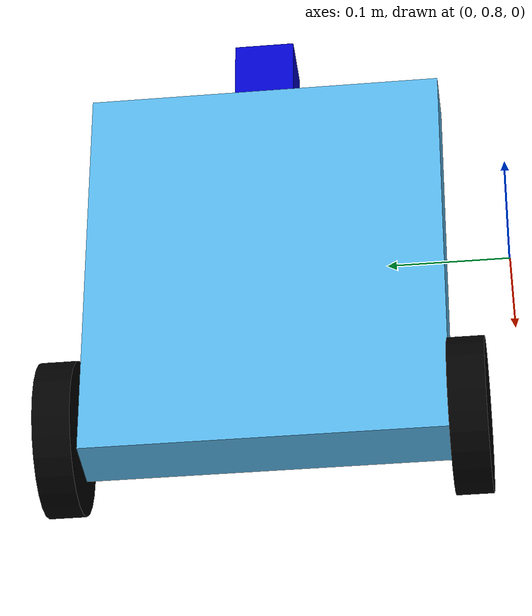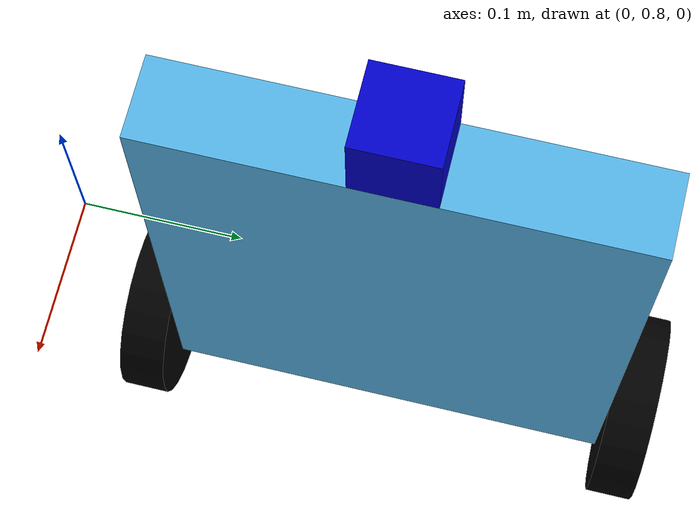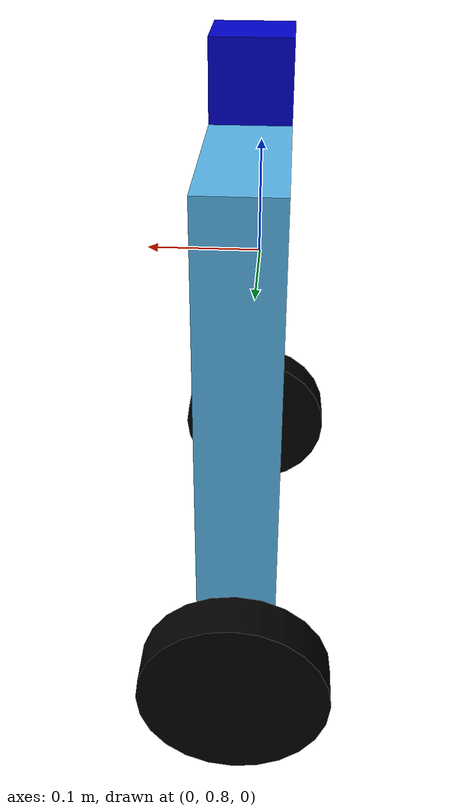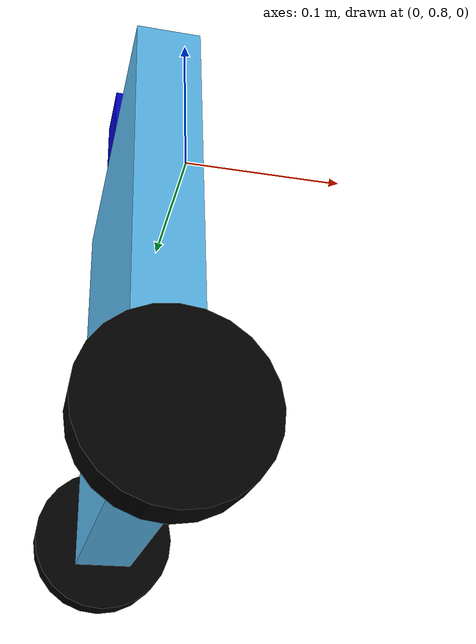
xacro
<?xml version="1.0"?>
<robot name="segway" xmlns:xacro="http://ros.org/wiki/xacro">

  <!-- SIZE BODY -->
  <xacro:property name="width_body" value="0.295" />
  <xacro:property name="height_body" value="0.35" />
  <xacro:property name="depth_body" value="0.05" />

  <!-- SIZE WHEEL -->
  <xacro:property name="diam_wheel" value="0.125" />
  <xacro:property name="len_wheel" value="0.03" />

  <!-- SIZE CAMERA -->
  <xacro:property name="cameraSize" value="0.05"/>
  <xacro:property name="cameraMass" value="0.1"/>

  <!-- Import all Gazebo-customization elements -->
  <xacro:include filename="$(find quimesis_segway_description)/urdf/segway.gazebo" />

  <material name="blue">
    <color rgba="0 0 0.8 1"/>
  </material>

  <material name="black">
    <color rgba="0 0 0 1"/>
  </material>

  <material name="white">
    <color rgba="1 1 1 1"/>
  </material>

  <!-- INERTIAL -->
  <xacro:macro name="cylinder_inertial_with_origin" params="radius length mass *origin">
     <inertial>
       <mass value="${mass}" />
       <xacro:insert_block name="origin" />
       <inertia ixx="${0.0833333 * mass * (3 * radius * radius + length * length)}" ixy="0.0" ixz="0.0"
         iyy="${0.0833333 * mass * (3 * radius * radius + length * length)}" iyz="0.0"
         izz="${0.5 * mass * radius * radius}" />
     </inertial>
  </xacro:macro>

  <xacro:macro name="inertial_with_origin" params="radius length mass izz *origin">
     <inertial>
       <mass value="${mass}" />
       <xacro:insert_block name="origin" />
       <inertia ixx="${0.0833333 * mass * (3 * radius * radius + length * length)}" ixy="0.0" ixz="0.0"
         iyy="${0.0833333 * mass * (3 * radius * radius + length * length)}" iyz="0.0"
         izz="${izz}" />
     </inertial>
  </xacro:macro>

  <!-- ROBOT -->

<link name="footprint" />

  <joint name="base_joint" type="fixed">
  <origin xyz="0 1 0" rpy="0 0 0"/>
    <parent link="footprint"/>
    <child link="base_link"/>
  </joint>

  <link name="base_link">
    <gazebo>
      <static>true</static>
    </gazebo>

    <visual>
      <origin xyz="0 0 0" rpy="0 0 0"/>
      <geometry>
          <box size="${depth_body} ${width_body} ${height_body} "/>
      </geometry>
    </visual>

    <collision>
      <origin xyz="0 0 0" rpy="0 0 0"/>
      <geometry>
        <box size="${depth_body} ${width_body} ${height_body} "/>
      </geometry>
    </collision>

    <inertial>
      <mass value="3.4" />
      <origin xyz="0 0 -0.08" rpy="0 0 0" />
      <inertia ixx="0.05" ixy="0.0" ixz="0.0"
        iyy="0.49" iyz="0.0"
        izz="0.055" />
    </inertial>
  </link>

  <!-- Wheel MACRO -->
  <xacro:macro name="wheel" params="prefix reflect">
    <link name="${prefix}_wheel">
      <visual>
        <origin xyz="0 0 0" rpy="${pi/2} 0 0" />
        <geometry>
          <cylinder radius="${diam_wheel/2}" length="${len_wheel}"/>
        </geometry>
        <material name="black"/>
      </visual>
      <collision>
        <origin xyz="0 0 0" rpy="${pi/2} 0 0" />
        <geometry>
          <cylinder radius="${diam_wheel/2}" length="${len_wheel}"/>
        </geometry>
      </collision>
      <xacro:inertial_with_origin radius="${diam_wheel/2}" length="${len_wheel}" mass="0.188" izz="0.0006" >
        <origin xyz="0 0 0" rpy="${pi/2} 0 0" />
      </xacro:inertial_with_origin >
    </link>

    <joint name="${prefix}_wheel_joint" type="continuous">
      <axis xyz="0 1 0" rpy="0 1 0" />
      <parent link="base_link"/>
      <child link="${prefix}_wheel"/>
      <origin xyz="0 ${reflect*(width_body/2 + len_wheel/2)} -0.15" rpy="0 0 0"/>
    </joint>

    <gazebo reference="${prefix}_wheel">
      <mu1 value="1e+16"/>
      <mu2 value="1e+16"/>
    </gazebo>
  </xacro:macro>

  <!-- WHEELs -->
  <xacro:wheel prefix="left" reflect="-1" />
  <xacro:wheel prefix="right" reflect="1" />

 <!-- CAMERA -->

<joint name="joint1" type="fixed">
    <origin xyz="0 0 ${height_body/2+0.025}" rpy="0 0 0"/>
    <parent link="base_link"/>
    <child link="camera"/>
  </joint>

<link name="camera">
    <collision>
      <origin xyz="0 0 0.0" rpy="0 0 0"/>
      <geometry>
        <box size="0.05 0.05 0.05"/>
      </geometry>
    </collision>

    <visual>
      <origin xyz="0 0 0.0" rpy="0 0 0"/>
      <geometry>
        <box size="0.05 0.05 0.05"/>
      </geometry>
      <material name="blue"/>
    </visual>

    <inertial>
      <origin xyz="0 0 0" rpy="0 0 0"/>
      <mass value="0.1"/>
      <inertia
        ixx="0.01" ixy="0.0" ixz="0.0"
        iyy="0.01" iyz="0.0"
        izz="0.01"/>
    </inertial>
  </link>

-->

  </robot>
